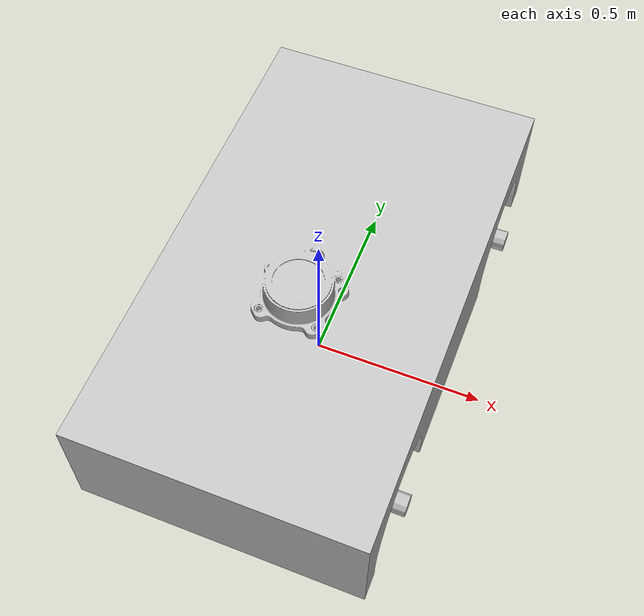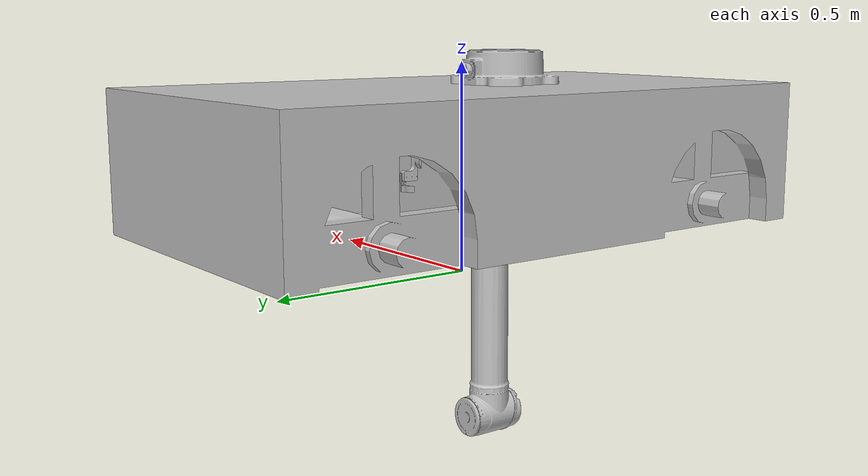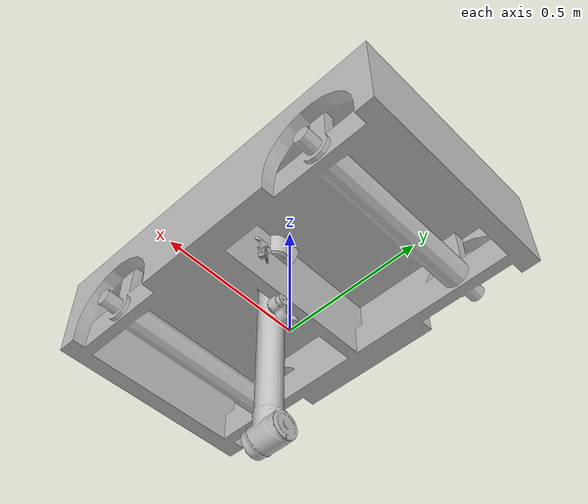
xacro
<?xml version="1.0"?>
<robot xmlns:xacro="http://www.ros.org/wiki/xacro" name="robot_description">
    <xacro:arg name="initial_positions_file" default="initial_positions.yaml" />

    <!-- Import robot_description urdf file -->
    <xacro:include filename="$(find robot_description)/urdf/robot_description.urdf" />

    <!-- Import control_xacro -->
    <xacro:include filename="robot_description.ros2_control.xacro" />

    <xacro:robot_description_ros2_control name="FakeSystem" initial_positions_file="$(arg initial_positions_file)"/>

</robot>

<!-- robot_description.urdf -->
<robot
  name="robot_description">

<!-- 定义一个隐式的“world”链接 -->
  <link name="world"/>
  <joint name="world_to_base" type="fixed">
    <parent link="world"/>
    <child link="base_link"/>
    <origin xyz="0 0 0" rpy="0 0 0"/>
  </joint>

  <link
    name="base_link">
    <inertial>
      <origin
        xyz="-0.104639487598817 0.022357250611096 0.0699459886454192"
        rpy="0 0 0" />
      <mass
        value="7.14346940014238" />
      <inertia
        ixx="0.0275309252217103"
        ixy="-8.6199795754766E-06"
        ixz="0.00017415868013956"
        iyy="0.0245686621314588"
        iyz="-1.55447858636492E-05"
        izz="0.0201933806933674" />
    </inertial>
    <visual>
      <origin
        xyz="0 0 0"
        rpy="0 0 0" />
      <geometry>
        <mesh
          filename="package://robot_description/meshes/base_link.STL" />
      </geometry>
      <material
        name="">
        <color
          rgba="0.752941176470588 0.752941176470588 0.752941176470588 1" />
      </material>
    </visual>
    <collision>
      <origin
        xyz="0 0 0"
        rpy="0 0 0" />
      <geometry>
        <mesh
          filename="package://robot_description/meshes/base_link.STL" />
      </geometry>
    </collision>
  </link>
  <link
    name="link1">
    <inertial>
      <origin
        xyz="-0.000148114458909443 0.000248847888860815 0.0829945908163572"
        rpy="0 0 0" />
      <mass
        value="0.669152126885544" />
      <inertia
        ixx="0.000617797577293175"
        ixy="-5.14226040265222E-05"
        ixz="1.66921299111368E-07"
        iyy="0.00060071252604216"
        iyz="-2.52768289972489E-06"
        izz="0.000564548697216278" />
    </inertial>
    <visual>
      <origin
        xyz="0 0 0"
        rpy="0 0 0" />
      <geometry>
        <mesh
          filename="package://robot_description/meshes/link1.STL" />
      </geometry>
      <material
        name="">
        <color
          rgba="0.752941176470588 0.752941176470588 0.752941176470588 1" />
      </material>
    </visual>
    <collision>
      <origin
        xyz="0 0 0"
        rpy="0 0 0" />
      <geometry>
        <mesh
          filename="package://robot_description/meshes/link1.STL" />
      </geometry>
    </collision>
  </link>
  <joint
    name="joint1"
    type="revolute">
    <origin
      xyz="0 0 0"
      rpy="0 0 0" />
    <parent
      link="base_link" />
    <child
      link="link1" />
    <axis
      xyz="0 0 1" />
    <limit
      lower="-3.14"
      upper="1"
      effort="100"
      velocity="1" />
  </joint>
  <link
    name="link2">
    <inertial>
      <origin
        xyz="-6.69607260569971E-06 0.125909518881389 0.0325276828056391"
        rpy="0 0 0" />
      <mass
        value="0.245621615505831" />
      <inertia
        ixx="0.00119230661894527"
        ixy="1.22766309242474E-08"
        ixz="-1.70415991092217E-09"
        iyy="5.86694773185132E-05"
        iyz="8.92296258518693E-05"
        izz="0.00121141865304698" />
    </inertial>
    <visual>
      <origin
        xyz="0 0 0"
        rpy="0 0 0" />
      <geometry>
        <mesh
          filename="package://robot_description/meshes/link2.STL" />
      </geometry>
      <material
        name="">
        <color
          rgba="0.752941176470588 0.752941176470588 0.752941176470588 1" />
      </material>
    </visual>
    <collision>
      <origin
        xyz="0 0 0"
        rpy="0 0 0" />
      <geometry>
        <mesh
          filename="package://robot_description/meshes/link2.STL" />
      </geometry>
    </collision>
  </link>
  <joint
    name="joint2"
    type="revolute">
    <origin
      xyz="0 0 0.1287"
      rpy="1.5707963267949 0 0" />
    <parent
      link="link1" />
    <child
      link="link2" />
    <axis
      xyz="0 0 -1" />
    <limit
      lower="-3.14"
      upper="0.8"
      effort="100"
      velocity="1" />
  </joint>
  <link
    name="link3">
    <inertial>
      <origin
        xyz="0.0138965214638596 -0.0408266877776776 -0.00856976377660978"
        rpy="0 0 0" />
      <mass
        value="0.149633690086611" />
      <inertia
        ixx="7.35413675966778E-05"
        ixy="1.55069761473879E-05"
        ixz="-1.0746117798365E-05"
        iyy="6.85329378793753E-05"
        iyz="1.75411610930592E-05"
        izz="8.78550222976087E-05" />
    </inertial>
    <visual>
      <origin
        xyz="0 0 0"
        rpy="0 0 0" />
      <geometry>
        <mesh
          filename="package://robot_description/meshes/link3.STL" />
      </geometry>
      <material
        name="">
        <color
          rgba="0.752941176470588 0.752941176470588 0.752941176470588 1" />
      </material>
    </visual>
    <collision>
      <origin
        xyz="0 0 0"
        rpy="0 0 0" />
      <geometry>
        <mesh
          filename="package://robot_description/meshes/link3.STL" />
      </geometry>
    </collision>
  </link>
  <joint
    name="joint3"
    type="revolute">
    <origin
      xyz="0 0.22 0"
      rpy="0 0 1.5707963267949" />
    <parent
      link="link2" />
    <child
      link="link3" />
    <axis
      xyz="0 0 1" />
    <limit
      lower="-3.14"
      upper="0.6"
      effort="100"
      velocity="1" />
  </joint>
  <link
    name="link4">
    <inertial>
      <origin
        xyz="1.08364236792169E-05 -0.00970550488291091 0.119202986452389"
        rpy="0 0 0" />
      <mass
        value="0.124846801253627" />
      <inertia
        ixx="0.000112541846660878"
        ixy="2.70584835351759E-09"
        ixz="-1.28967834932766E-08"
        iyy="0.000106442483203341"
        iyz="1.35817412267987E-05"
        izz="2.30513060400853E-05" />
    </inertial>
    <visual>
      <origin
        xyz="0 0 0"
        rpy="0 0 0" />
      <geometry>
        <mesh
          filename="package://robot_description/meshes/link4.STL" />
      </geometry>
      <material
        name="">
        <color
          rgba="0.752941176470588 0.752941176470588 0.752941176470588 1" />
      </material>
    </visual>
    <collision>
      <origin
        xyz="0 0 0"
        rpy="0 0 0" />
      <geometry>
        <mesh
          filename="package://robot_description/meshes/link4.STL" />
      </geometry>
    </collision>
  </link>
  <joint
    name="joint4"
    type="revolute">
    <origin
      xyz="0 0 0"
      rpy="1.5707963267949 0 0" />
    <parent
      link="link3" />
    <child
      link="link4" />
    <axis
      xyz="0 0 -1" />
    <limit
      lower="-3.14"
      upper="0.785"
      effort="100"
      velocity="1" />
  </joint>
  <link
    name="link5">
    <inertial>
      <origin
        xyz="0.0151160239699552 1.02137944803793E-05 0.0101506493498486"
        rpy="0 0 0" />
      <mass
        value="0.0454906138754859" />
      <inertia
        ixx="8.20500411022529E-06"
        ixy="6.16618916575177E-09"
        ixz="3.65621348537199E-06"
        iyy="1.49779308644152E-05"
        iyz="-5.3887456445791E-10"
        izz="1.42179828273889E-05" />
    </inertial>
    <visual>
      <origin
        xyz="0 0 0"
        rpy="0 0 0" />
      <geometry>
        <mesh
          filename="package://robot_description/meshes/link5.STL" />
      </geometry>
      <material
        name="">
        <color
          rgba="0.752941176470588 0.752941176470588 0.752941176470588 1" />
      </material>
    </visual>
    <collision>
      <origin
        xyz="0 0 0"
        rpy="0 0 0" />
      <geometry>
        <mesh
          filename="package://robot_description/meshes/link5.STL" />
      </geometry>
    </collision>
  </link>
  <joint
    name="joint5"
    type="revolute">
    <origin
      xyz="0 0 0.168499999999998"
      rpy="1.57079632679489 0 3.14159265358979" />
    <parent
      link="link4" />
    <child
      link="link5" />
    <axis
      xyz="0 0 1" />
    <limit
      lower="-3.14"
      upper="0.785"
      effort="100"
      velocity="1" />
  </joint>
  <link
    name="link6">
    <inertial>
      <origin
        xyz="-5.55111512312578E-17 1.38777878078145E-17 -0.0463899556868537"
        rpy="0 0 0" />
      <mass
        value="0.0271812481344181" />
      <inertia
        ixx="3.28834135753452E-06"
        ixy="-1.62406896634558E-21"
        ixz="1.81577506743978E-21"
        iyy="3.28834135753452E-06"
        iyz="-1.2062594219773E-21"
        izz="5.92981850337553E-06" />
    </inertial>
    <visual>
      <origin
        xyz="0 0 0"
        rpy="0 0 0" />
      <geometry>
        <mesh
          filename="package://robot_description/meshes/link6.STL" />
      </geometry>
      <material
        name="">
        <color
          rgba="0.752941176470588 0.752941176470588 0.752941176470588 1" />
      </material>
    </visual>
    <collision>
      <origin
        xyz="0 0 0"
        rpy="0 0 0" />
      <geometry>
        <mesh
          filename="package://robot_description/meshes/link6.STL" />
      </geometry>
    </collision>
  </link>
  <joint
    name="joint6"
    type="revolute">
    <origin
      xyz="0 0 0"
      rpy="1.57079632679489 0 -1.5707963267949" />
    <parent
      link="link5" />
    <child
      link="link6" />
    <axis
      xyz="0 0 1" />
    <limit
      lower="-3.14"
      upper="3.14"
      effort="100"
      velocity="1" />
  </joint>
  <link
    name="link_hand">
    <inertial>
      <origin
        xyz="0.00161715614228958 -0.00457033939810397 -0.0114698203583798"
        rpy="0 0 0" />
      <mass
        value="0.159305199837658" />
      <inertia
        ixx="0.000115374873473436"
        ixy="2.28195040322155E-08"
        ixz="6.94501241653804E-09"
        iyy="9.79010867933865E-05"
        iyz="-1.62460899539386E-06"
        izz="0.000178224259560207" />
    </inertial>
    <visual>
      <origin
        xyz="0 0 0"
        rpy="0 0 0" />
      <geometry>
        <mesh
          filename="package://robot_description/meshes/link_hand.STL" />
      </geometry>
      <material
        name="">
        <color
          rgba="0.752941176470588 0.752941176470588 0.752941176470588 1" />
      </material>
    </visual>
    <collision>
      <origin
        xyz="0 0 0"
        rpy="0 0 0" />
      <geometry>
        <mesh
          filename="package://robot_description/meshes/link_hand.STL" />
      </geometry>
    </collision>
  </link>
  <joint
    name="joint_hand"
    type="fixed">
    <origin
      xyz="0 0 -0.0934999999999999"
      rpy="1.5707963267949 0 -1.5707963267949" />
    <parent
      link="link6" />
    <child
      link="link_hand" />
    <axis
      xyz="0 0 0" />
    <limit
      lower="-3.14"
      upper="3.14"
      effort="0"
      velocity="0" />
  </joint>
  <link
    name="link_left">
    <inertial>
      <origin
        xyz="-0.0179265072850996 0.0440594673647828 0.000395613059763593"
        rpy="0 0 0" />
      <mass
        value="0.00926377813438083" />
      <inertia
        ixx="1.28223239525482E-06"
        ixy="2.49392987509507E-07"
        ixz="-4.76276205082436E-07"
        iyy="2.72326254806976E-06"
        iyz="-1.20159791898431E-08"
        izz="2.29338902229986E-06" />
    </inertial>
    <visual>
      <origin
        xyz="0 0 0"
        rpy="0 0 0" />
      <geometry>
        <mesh
          filename="package://robot_description/meshes/link_left.STL" />
      </geometry>
      <material
        name="">
        <color
          rgba="0.627450980392157 0.627450980392157 0.627450980392157 1" />
      </material>
    </visual>
    <collision>
      <origin
        xyz="0 0 0"
        rpy="0 0 0" />
      <geometry>
        <mesh
          filename="package://robot_description/meshes/link_left.STL" />
      </geometry>
    </collision>
  </link>
  <joint
    name="joint_left"
    type="prismatic">
    <origin
      xyz="0 -0.04 0"
      rpy="0 0 1.5707963267949" />
    <parent
      link="link_hand" />
    <child
      link="link_left" />
    <axis
      xyz="0 1 0" />
    <limit
      lower="-0.01"
      upper="0.01"
      effort="100"
      velocity="1" />
  </joint>
  <link
    name="link_right">
    <inertial>
      <origin
        xyz="0.0183365072850993 0.0441975506103265 0.000395635377088421"
        rpy="0 0 0" />
      <mass
        value="0.0092637781343808" />
      <inertia
        ixx="1.28223016424245E-06"
        ixy="-2.49392987509505E-07"
        ixz="4.76273519628528E-07"
        iyy="2.72326031705737E-06"
        iyz="-1.20131298102489E-08"
        izz="2.29338902229986E-06" />
    </inertial>
    <visual>
      <origin
        xyz="0 0 0"
        rpy="0 0 0" />
      <geometry>
        <mesh
          filename="package://robot_description/meshes/link_right.STL" />
      </geometry>
      <material
        name="">
        <color
          rgba="0.627450980392157 0.627450980392157 0.627450980392157 1" />
      </material>
    </visual>
    <collision>
      <origin
        xyz="0 0 0"
        rpy="0 0 0" />
      <geometry>
        <mesh
          filename="package://robot_description/meshes/link_right.STL" />
      </geometry>
    </collision>
  </link>
  <joint
    name="joint_right"
    type="prismatic">
    <origin
      xyz="0 -0.04 0"
      rpy="0 0 -1.5707963267949" />
    <parent
      link="link_hand" />
    <child
      link="link_right" />
    <axis
      xyz="0 1 0" />
    <limit
      lower="-0.01"
      upper="0.01"
      effort="100"
      velocity="1" />
  </joint>
</robot>
